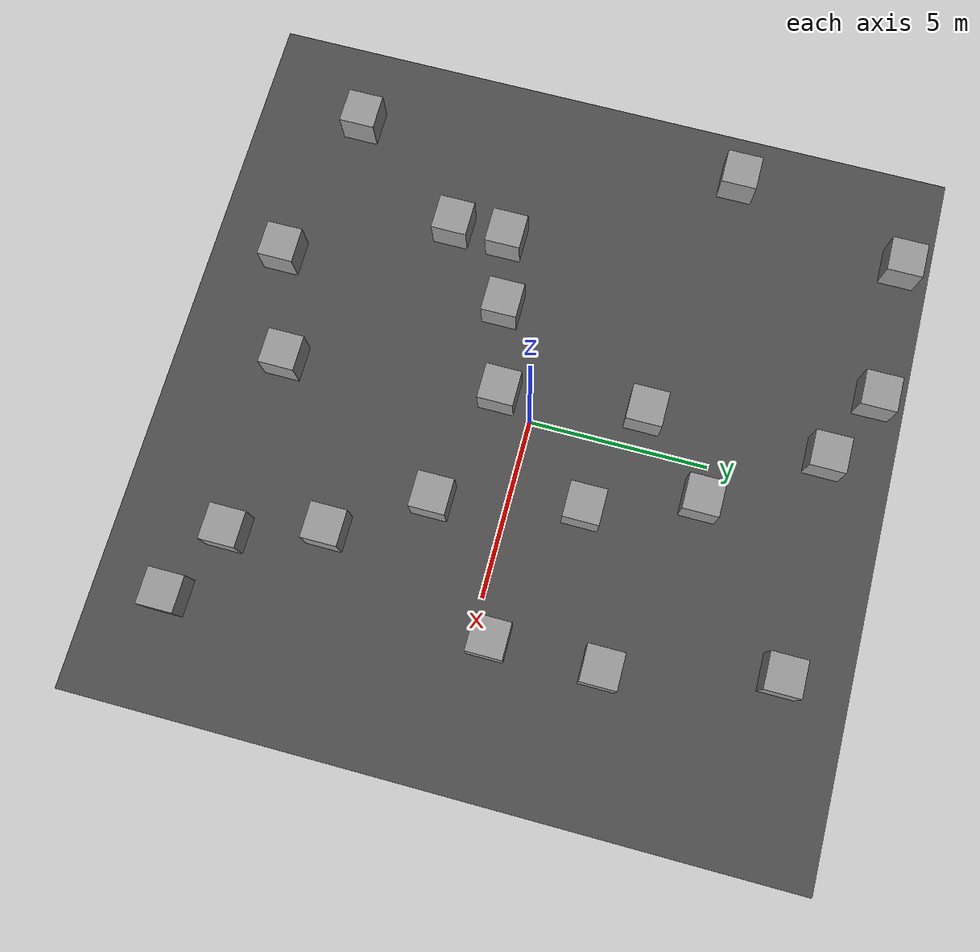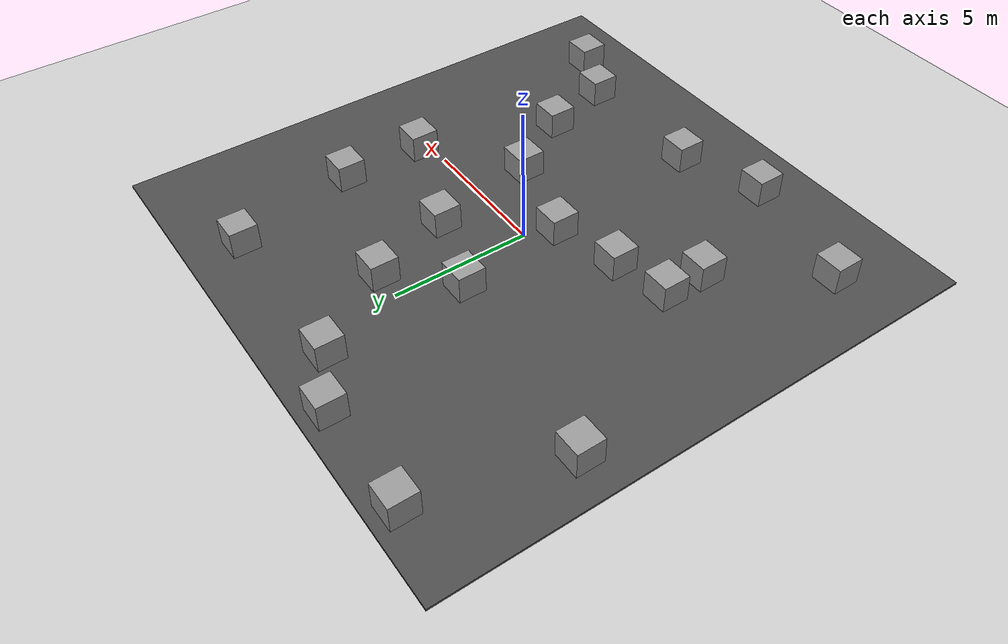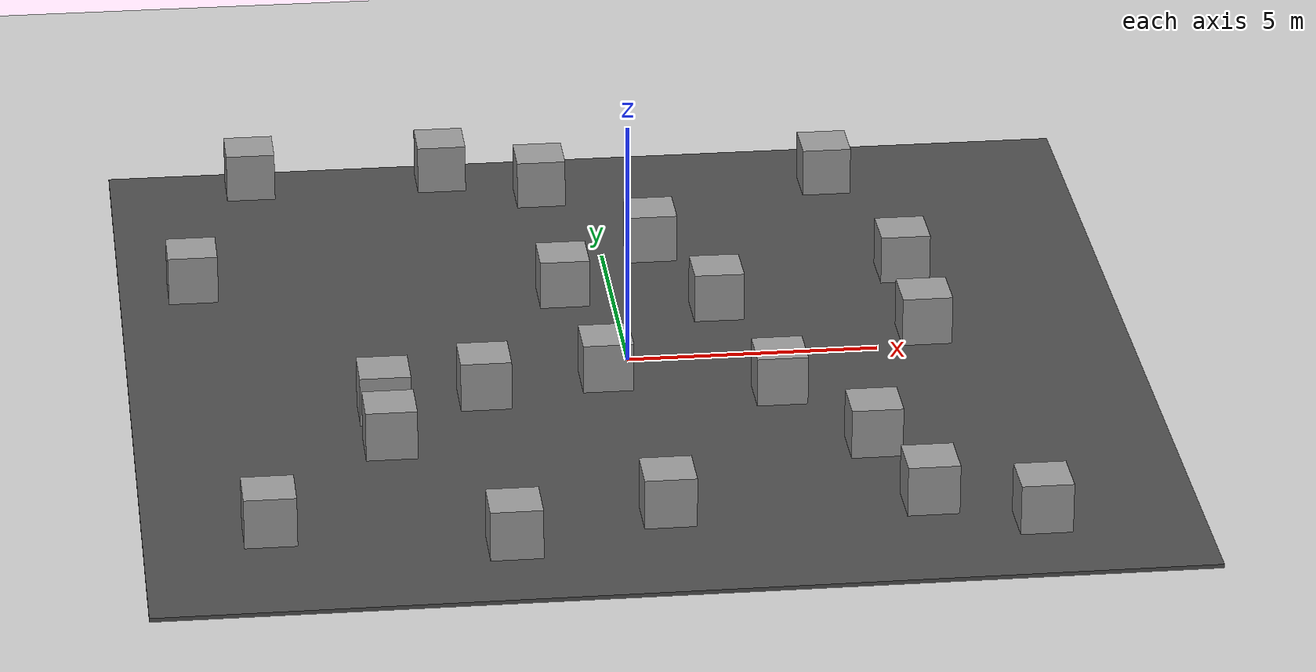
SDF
<sdf version="1.4">
 <world name="default">
  <light name="sun" type="directional">
   <pose>0 0 10 0 -0 0</pose>
   <diffuse>0.8 0.8 0.8 1</diffuse>
   <specular>0.2 0.2 0.2 1</specular>
   <attenuation>
    <range>1000</range>
    <constant>0.9</constant>
    <linear>0.01</linear>
    <quadratic>0.001</quadratic>
   </attenuation>
   <direction>-0.5 0.1 -0.9</direction>
  </light>
  <model name="ground_plane">
   <static>1</static>
   <link name="link">
    <collision name="collision">
     <geometry><plane><normal>0 0 1</normal><size>100 100</size></plane></geometry>
     <surface><friction><ode><mu>100</mu><mu2>50</mu2></ode></friction></surface>
    </collision>
    <visual name="visual">
     <cast_shadows>0</cast_shadows>
     <geometry><plane><normal>0 0 1</normal><size>100 100</size></plane></geometry>
     <material>
      <script><uri>file://media/materials/scripts/gazebo.material</uri><name>Gazebo/Grey</name></script>
     </material>
    </visual>
    <velocity_decay><linear>0</linear><angular>0</angular></velocity_decay>
   </link>
  </model>
  <physics type="ode">
   <max_step_size>0.01</max_step_size>
   <real_time_factor>1</real_time_factor>
   <real_time_update_rate>100</real_time_update_rate>
   <gravity>0 0 -9.8</gravity>
  </physics>
  <scene><ambient>0.4 0.4 0.4 1</ambient><background>0.7 0.7 0.7 1</background><shadows>1</shadows></scene>
  <model name="asphalt_plane">
   <static>1</static>
   <link name="link">
    <collision name="collision"><geometry><box><size>20 20 0.1</size></box></geometry></collision>
    <visual name="visual">
     <cast_shadows>0</cast_shadows>
     <geometry><box><size>20 20 0.1</size></box></geometry>
     <material>
      <script>
       <uri>model://asphalt_plane/materials/scripts</uri>
       <uri>model://asphalt_plane/materials/textures</uri>
       <name>vrc/asphalt</name>
      </script>
     </material>
    </visual>
    <velocity_decay><linear>0</linear><angular>0</angular></velocity_decay>
   </link>
   <pose>0.076733 -0.110379 0 0 -0 0</pose>
  </model>
  <spherical_coordinates>
   <surface_model>EARTH_WGS84</surface_model>
   <latitude_deg>0</latitude_deg>
   <longitude_deg>0</longitude_deg>
   <elevation>0</elevation>
   <heading_deg>0</heading_deg>
  </spherical_coordinates>
  <model name="unit_box_1">
   <pose>-3 9 0.55 -0 -0 -0</pose>
   <link name="link">
    <inertial>
     <mass>1</mass>
     <inertia><ixx>1</ixx><ixy>0</ixy><ixz>0</ixz><iyy>1</iyy><iyz>0</iyz><izz>1</izz></inertia>
    </inertial>
    <collision name="collision"><geometry><box><size>1 1 1</size></box></geometry></collision>
    <visual name="visual">
     <geometry><box><size>1 1 1</size></box></geometry>
     <material>
      <script><uri>file://media/materials/scripts/gazebo.material</uri><name>Gazebo/Grey</name></script>
     </material>
    </visual>
    <velocity_decay><linear>0</linear><angular>0</angular></velocity_decay>
   </link>
   <static>0</static>
  </model>
  <model name="unit_box_4">
   <pose>7 -8 0.55 -0 -0 -0</pose>
   <link name="link">
    <inertial>
     <mass>1</mass>
     <inertia><ixx>1</ixx><ixy>0</ixy><ixz>0</ixz><iyy>1</iyy><iyz>0</iyz><izz>1</izz></inertia>
    </inertial>
    <collision name="collision"><geometry><box><size>1 1 1</size></box></geometry></collision>
    <visual name="visual">
     <geometry><box><size>1 1 1</size></box></geometry>
     <material>
      <script><uri>file://media/materials/scripts/gazebo.material</uri><name>Gazebo/Grey</name></script>
     </material>
    </visual>
    <velocity_decay><linear>0</linear><angular>0</angular></velocity_decay>
   </link>
   <static>0</static>
  </model>
  <model name="unit_box_5">
   <pose>4.28938 -4.44878 0.55 -0 -0 -0</pose>
   <link name="link">
    <inertial>
     <mass>1</mass>
     <inertia><ixx>1</ixx><ixy>0</ixy><ixz>0</ixz><iyy>1</iyy><iyz>0</iyz><izz>1</izz></inertia>
    </inertial>
    <collision name="collision"><geometry><box><size>1 1 1</size></box></geometry></collision>
    <visual name="visual">
     <geometry><box><size>1 1 1</size></box></geometry>
     <material>
      <script><uri>file://media/materials/scripts/gazebo.material</uri><name>Gazebo/Grey</name></script>
     </material>
    </visual>
    <velocity_decay><linear>0</linear><angular>0</angular></velocity_decay>
   </link>
   <static>0</static>
  </model>
  <model name="unit_box_6">
   <pose>2.77677 -1.96176 0.55 -0 -0 -0</pose>
   <link name="link">
    <inertial>
     <mass>1</mass>
     <inertia><ixx>1</ixx><ixy>0</ixy><ixz>0</ixz><iyy>1</iyy><iyz>0</iyz><izz>1</izz></inertia>
    </inertial>
    <collision name="collision"><geometry><box><size>1 1 1</size></box></geometry></collision>
    <visual name="visual">
     <geometry><box><size>1 1 1</size></box></geometry>
     <material>
      <script><uri>file://media/materials/scripts/gazebo.material</uri><name>Gazebo/Grey</name></script>
     </material>
    </visual>
    <velocity_decay><linear>0</linear><angular>0</angular></velocity_decay>
   </link>
   <static>0</static>
  </model>
  <model name="unit_box_7">
   <pose>-7 9 0.55 -0 -0 -0</pose>
   <link name="link">
    <inertial>
     <mass>1</mass>
     <inertia><ixx>1</ixx><ixy>0</ixy><ixz>0</ixz><iyy>1</iyy><iyz>0</iyz><izz>1</izz></inertia>
    </inertial>
    <collision name="collision"><geometry><box><size>1 1 1</size></box></geometry></collision>
    <visual name="visual">
     <geometry><box><size>1 1 1</size></box></geometry>
     <material>
      <script><uri>file://media/materials/scripts/gazebo.material</uri><name>Gazebo/Grey</name></script>
     </material>
    </visual>
    <velocity_decay><linear>0</linear><angular>0</angular></velocity_decay>
   </link>
   <static>0</static>
  </model>
  <model name="unit_box_8">
   <pose>1 5 0.55 -0 -0 -0</pose>
   <link name="link">
    <inertial>
     <mass>1</mass>
     <inertia><ixx>1</ixx><ixy>0</ixy><ixz>0</ixz><iyy>1</iyy><iyz>0</iyz><izz>1</izz></inertia>
    </inertial>
    <collision name="collision"><geometry><box><size>1 1 1</size></box></geometry></collision>
    <visual name="visual">
     <geometry><box><size>1 1 1</size></box></geometry>
     <material>
      <script><uri>file://media/materials/scripts/gazebo.material</uri><name>Gazebo/Grey</name></script>
     </material>
    </visual>
    <velocity_decay><linear>0</linear><angular>0</angular></velocity_decay>
   </link>
   <static>0</static>
  </model>
  <model name="unit_box_9">
   <pose>-5 -3.55028 0.55 -0 -0 -0</pose>
   <link name="link">
    <inertial>
     <mass>1</mass>
     <inertia><ixx>1</ixx><ixy>0</ixy><ixz>0</ixz><iyy>1</iyy><iyz>0</iyz><izz>1</izz></inertia>
    </inertial>
    <collision name="collision"><geometry><box><size>1 1 1</size></box></geometry></collision>
    <visual name="visual">
     <geometry><box><size>1 1 1</size></box></geometry>
     <material>
      <script><uri>file://media/materials/scripts/gazebo.material</uri><name>Gazebo/Grey</name></script>
     </material>
    </visual>
    <velocity_decay><linear>0</linear><angular>0</angular></velocity_decay>
   </link>
   <static>0</static>
  </model>
  <model name="unit_box_10">
   <pose>-3 -1.56638 0.55 -0 -0 -0</pose>
   <link name="link">
    <inertial>
     <mass>1</mass>
     <inertia><ixx>1</ixx><ixy>0</ixy><ixz>0</ixz><iyy>1</iyy><iyz>0</iyz><izz>1</izz></inertia>
    </inertial>
    <collision name="collision"><geometry><box><size>1 1 1</size></box></geometry></collision>
    <visual name="visual">
     <geometry><box><size>1 1 1</size></box></geometry>
     <material>
      <script><uri>file://media/materials/scripts/gazebo.material</uri><name>Gazebo/Grey</name></script>
     </material>
    </visual>
    <velocity_decay><linear>0</linear><angular>0</angular></velocity_decay>
   </link>
   <static>0</static>
  </model>
  <model name="unit_box_11">
   <pose>2.01166 2.0133 0.557236 -0.00728 0.007244 0.001283</pose>
   <link name="link">
    <inertial>
     <mass>1</mass>
     <inertia><ixx>1</ixx><ixy>0</ixy><ixz>0</ixz><iyy>1</iyy><iyz>0</iyz><izz>1</izz></inertia>
    </inertial>
    <collision name="collision"><geometry><box><size>1 1 1</size></box></geometry></collision>
    <visual name="visual">
     <geometry><box><size>1 1 1</size></box></geometry>
     <material>
      <script><uri>file://media/materials/scripts/gazebo.material</uri><name>Gazebo/Grey</name></script>
     </material>
    </visual>
    <velocity_decay><linear>0</linear><angular>0</angular></velocity_decay>
   </link>
   <static>0</static>
  </model>
  <model name="unit_box_13">
   <pose>-5 -2 0.55 -0 -0 -0</pose>
   <link name="link">
    <inertial>
     <mass>1</mass>
     <inertia><ixx>1</ixx><ixy>0</ixy><ixz>0</ixz><iyy>1</iyy><iyz>0</iyz><izz>1</izz></inertia>
    </inertial>
    <collision name="collision"><geometry><box><size>1 1 1</size></box></geometry></collision>
    <visual name="visual">
     <geometry><box><size>1 1 1</size></box></geometry>
     <material>
      <script><uri>file://media/materials/scripts/gazebo.material</uri><name>Gazebo/Grey</name></script>
     </material>
    </visual>
    <velocity_decay><linear>0</linear><angular>0</angular></velocity_decay>
   </link>
   <static>0</static>
  </model>
  <model name="unit_box_15">
   <pose>-8.44366 4 0.55 -0 -0 -0</pose>
   <link name="link">
    <inertial>
     <mass>1</mass>
     <inertia><ixx>1</ixx><ixy>0</ixy><ixz>0</ixz><iyy>1</iyy><iyz>0</iyz><izz>1</izz></inertia>
    </inertial>
    <collision name="collision"><geometry><box><size>1 1 1</size></box></geometry></collision>
    <visual name="visual">
     <geometry><box><size>1 1 1</size></box></geometry>
     <material>
      <script><uri>file://media/materials/scripts/gazebo.material</uri><name>Gazebo/Grey</name></script>
     </material>
    </visual>
    <velocity_decay><linear>0</linear><angular>0</angular></velocity_decay>
   </link>
   <static>0</static>
  </model>
  <model name="unit_box_16">
   <pose>-1 8 0.55 -0 -0 -0</pose>
   <link name="link">
    <inertial>
     <mass>1</mass>
     <inertia><ixx>1</ixx><ixy>0</ixy><ixz>0</ixz><iyy>1</iyy><iyz>0</iyz><izz>1</izz></inertia>
    </inertial>
    <collision name="collision"><geometry><box><size>1 1 1</size></box></geometry></collision>
    <visual name="visual">
     <geometry><box><size>1 1 1</size></box></geometry>
     <material>
      <script><uri>file://media/materials/scripts/gazebo.material</uri><name>Gazebo/Grey</name></script>
     </material>
    </visual>
    <velocity_decay><linear>0</linear><angular>0</angular></velocity_decay>
   </link>
   <static>0</static>
  </model>
  <model name="unit_box_17">
   <pose>6 3.46464 0.55 -0 -0 -0</pose>
   <link name="link">
    <inertial>
     <mass>1</mass>
     <inertia><ixx>1</ixx><ixy>0</ixy><ixz>0</ixz><iyy>1</iyy><iyz>0</iyz><izz>1</izz></inertia>
    </inertial>
    <collision name="collision"><geometry><box><size>1 1 1</size></box></geometry></collision>
    <visual name="visual">
     <geometry><box><size>1 1 1</size></box></geometry>
     <material>
      <script><uri>file://media/materials/scripts/gazebo.material</uri><name>Gazebo/Grey</name></script>
     </material>
    </visual>
    <velocity_decay><linear>0</linear><angular>0</angular></velocity_decay>
   </link>
   <static>0</static>
  </model>
  <model name="unit_box_18">
   <pose>-1 3 0.55 -0 -0 -0</pose>
   <link name="link">
    <inertial>
     <mass>1</mass>
     <inertia><ixx>1</ixx><ixy>0</ixy><ixz>0</ixz><iyy>1</iyy><iyz>0</iyz><izz>1</izz></inertia>
    </inertial>
    <collision name="collision"><geometry><box><size>1 1 1</size></box></geometry></collision>
    <visual name="visual">
     <geometry><box><size>1 1 1</size></box></geometry>
     <material>
      <script><uri>file://media/materials/scripts/gazebo.material</uri><name>Gazebo/Grey</name></script>
     </material>
    </visual>
    <velocity_decay><linear>0</linear><angular>0</angular></velocity_decay>
   </link>
   <static>0</static>
  </model>
  <model name="unit_box_19">
   <pose>-0.54354 -1 0.55 -0 -0 -0</pose>
   <link name="link">
    <inertial>
     <mass>1</mass>
     <inertia><ixx>1</ixx><ixy>0</ixy><ixz>0</ixz><iyy>1</iyy><iyz>0</iyz><izz>1</izz></inertia>
    </inertial>
    <collision name="collision"><geometry><box><size>1 1 1</size></box></geometry></collision>
    <visual name="visual">
     <geometry><box><size>1 1 1</size></box></geometry>
     <material>
      <script><uri>file://media/materials/scripts/gazebo.material</uri><name>Gazebo/Grey</name></script>
     </material>
    </visual>
    <velocity_decay><linear>0</linear><angular>0</angular></velocity_decay>
   </link>
   <static>0</static>
  </model>
  <model name="unit_box_20">
   <pose>5 -7 0.55 -0 -0 -0</pose>
   <link name="link">
    <inertial>
     <mass>1</mass>
     <inertia><ixx>1</ixx><ixy>0</ixy><ixz>0</ixz><iyy>1</iyy><iyz>0</iyz><izz>1</izz></inertia>
    </inertial>
    <collision name="collision"><geometry><box><size>1 1 1</size></box></geometry></collision>
    <visual name="visual">
     <geometry><box><size>1 1 1</size></box></geometry>
     <material>
      <script><uri>file://media/materials/scripts/gazebo.material</uri><name>Gazebo/Grey</name></script>
     </material>
    </visual>
    <velocity_decay><linear>0</linear><angular>0</angular></velocity_decay>
   </link>
   <static>0</static>
  </model>
  <model name="unit_box_22">
   <pose>-3 -8 0.55 -0 -0 -0</pose>
   <link name="link">
    <inertial>
     <mass>1</mass>
     <inertia><ixx>1</ixx><ixy>0</ixy><ixz>0</ixz><iyy>1</iyy><iyz>0</iyz><izz>1</izz></inertia>
    </inertial>
    <collision name="collision"><geometry><box><size>1 1 1</size></box></geometry></collision>
    <visual name="visual">
     <geometry><box><size>1 1 1</size></box></geometry>
     <material>
      <script><uri>file://media/materials/scripts/gazebo.material</uri><name>Gazebo/Grey</name></script>
     </material>
    </visual>
    <velocity_decay><linear>0</linear><angular>0</angular></velocity_decay>
   </link>
   <static>0</static>
  </model>
  <model name="unit_box_23">
   <pose>-0 -7 0.55 -0 -0 -0</pose>
   <link name="link">
    <inertial>
     <mass>1</mass>
     <inertia><ixx>1</ixx><ixy>0</ixy><ixz>0</ixz><iyy>1</iyy><iyz>0</iyz><izz>1</izz></inertia>
    </inertial>
    <collision name="collision"><geometry><box><size>1 1 1</size></box></geometry></collision>
    <visual name="visual">
     <geometry><box><size>1 1 1</size></box></geometry>
     <material>
      <script><uri>file://media/materials/scripts/gazebo.material</uri><name>Gazebo/Grey</name></script>
     </material>
    </visual>
    <velocity_decay><linear>0</linear><angular>0</angular></velocity_decay>
   </link>
   <static>0</static>
  </model>
  <model name="unit_box_24">
   <pose>-7.53221 -7 0.55 -0 -0 -0</pose>
   <link name="link">
    <inertial>
     <mass>1</mass>
     <inertia><ixx>1</ixx><ixy>0</ixy><ixz>0</ixz><iyy>1</iyy><iyz>0</iyz><izz>1</izz></inertia>
    </inertial>
    <collision name="collision"><geometry><box><size>1 1 1</size></box></geometry></collision>
    <visual name="visual">
     <geometry><box><size>1 1 1</size></box></geometry>
     <material>
      <script><uri>file://media/materials/scripts/gazebo.material</uri><name>Gazebo/Grey</name></script>
     </material>
    </visual>
    <velocity_decay><linear>0</linear><angular>0</angular></velocity_decay>
   </link>
   <static>0</static>
  </model>
  <model name="unit_box_25">
   <pose>6 0.472322 0.55 -0 -0 -0</pose>
   <link name="link">
    <inertial>
     <mass>1</mass>
     <inertia><ixx>1</ixx><ixy>0</ixy><ixz>0</ixz><iyy>1</iyy><iyz>0</iyz><izz>1</izz></inertia>
    </inertial>
    <collision name="collision"><geometry><box><size>1 1 1</size></box></geometry></collision>
    <visual name="visual">
     <geometry><box><size>1 1 1</size></box></geometry>
     <material>
      <script><uri>file://media/materials/scripts/gazebo.material</uri><name>Gazebo/Grey</name></script>
     </material>
    </visual>
    <velocity_decay><linear>0</linear><angular>0</angular></velocity_decay>
   </link>
   <static>0</static>
  </model>
  <model name="unit_box_26">
   <pose>5 8 0.55 -0 -0 -0</pose>
   <link name="link">
    <inertial>
     <mass>1</mass>
     <inertia><ixx>1</ixx><ixy>0</ixy><ixz>0</ixz><iyy>1</iyy><iyz>0</iyz><izz>1</izz></inertia>
    </inertial>
    <collision name="collision"><geometry><box><size>1 1 1</size></box></geometry></collision>
    <visual name="visual">
     <geometry><box><size>1 1 1</size></box></geometry>
     <material>
      <script><uri>file://media/materials/scripts/gazebo.material</uri><name>Gazebo/Grey</name></script>
     </material>
    </visual>
    <velocity_decay><linear>0</linear><angular>0</angular></velocity_decay>
   </link>
   <static>0</static>
  </model>
 </world>
</sdf>
